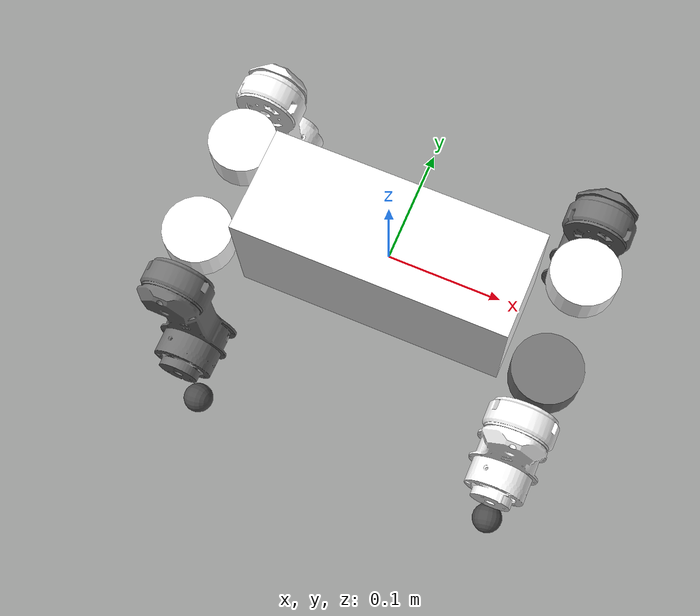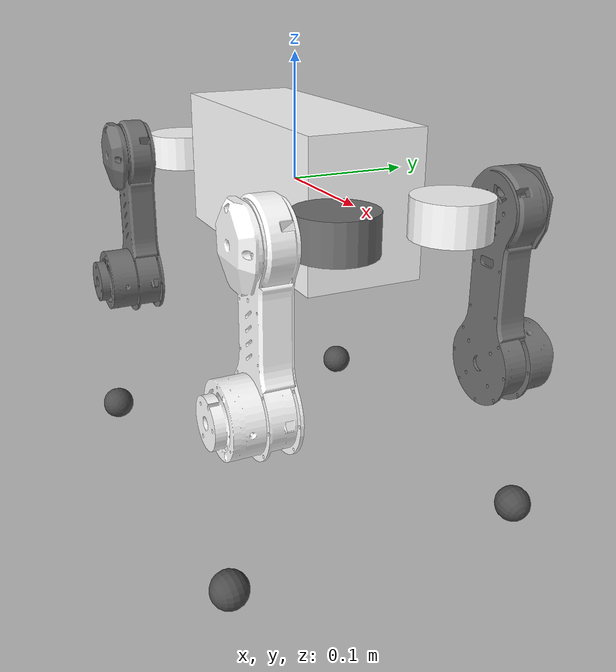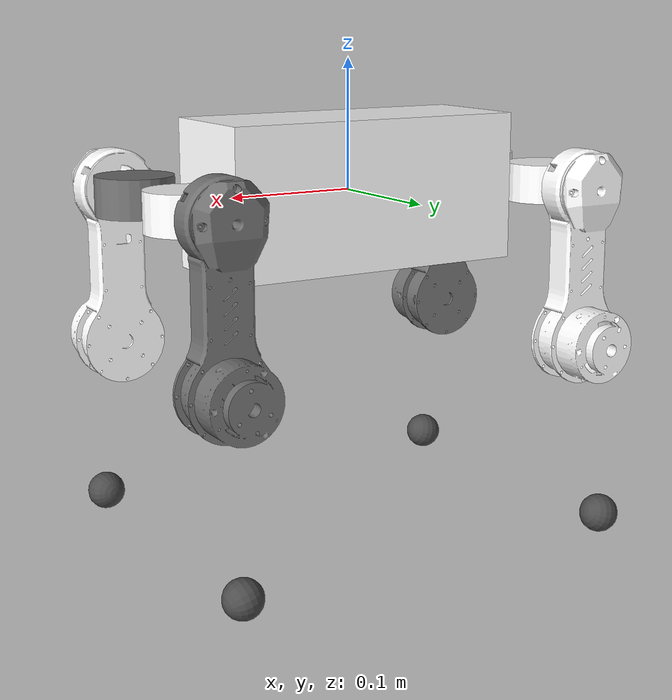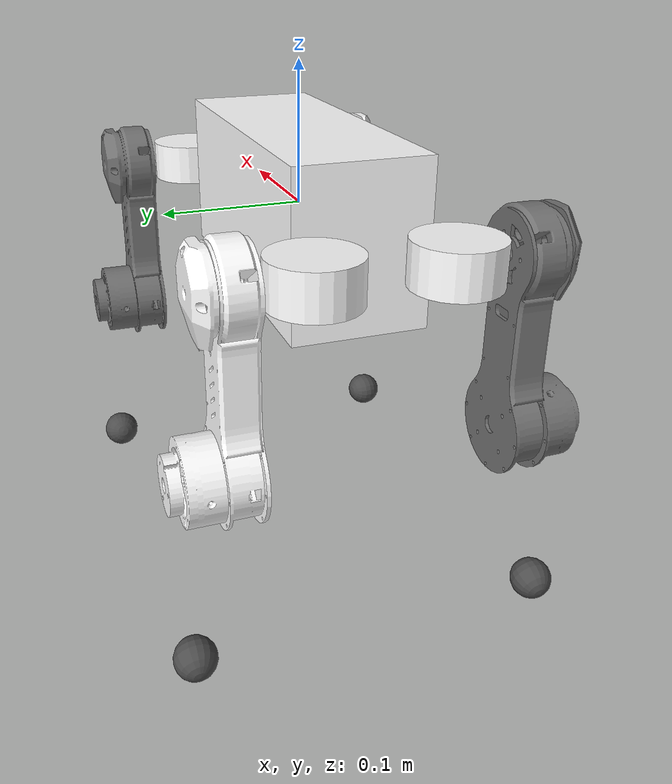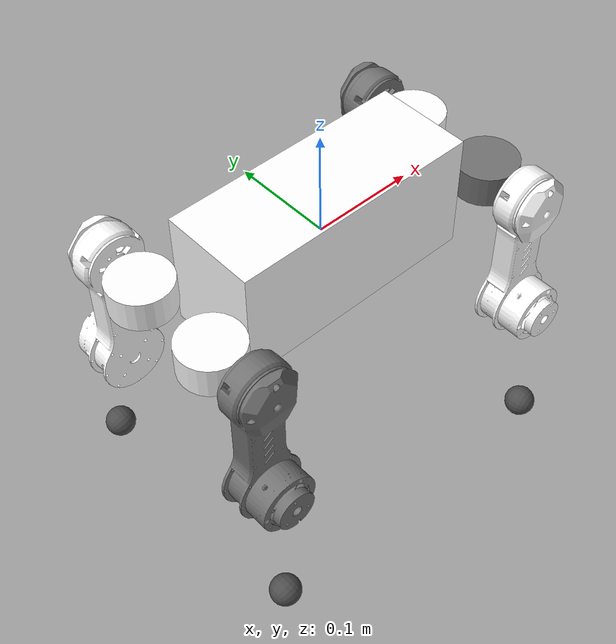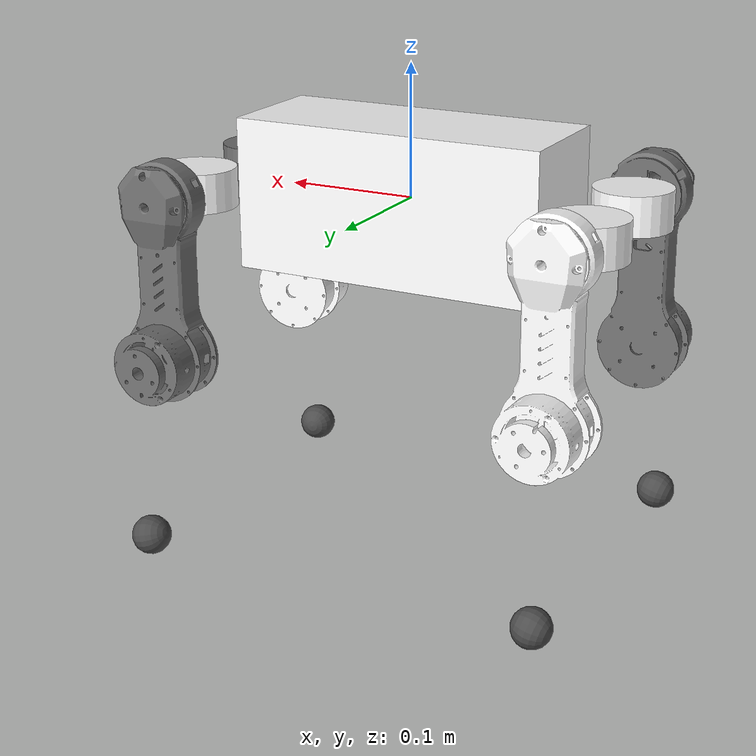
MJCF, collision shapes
<mujoco model="tinymal">
    <compiler angle="radian" meshdir="/home/pi/Downloads/LocomotionWithNP3O-master/resources/tinymal/meshes/" />
    <size njmax="500" nconmax="100" />
    <asset>
        <mesh name="base" file="base.STL" />
        <mesh name="FL_hip" file="FL_hip.STL" />
        <mesh name="FL_thigh" file="FL_thigh.STL" />
        <mesh name="FL_calf" file="FL_calf.STL" />
        <mesh name="FL_foot" file="FL_foot.STL" />
        <mesh name="FR_hip" file="FR_hip.STL" />
        <mesh name="FR_thigh" file="FR_thigh.STL" />
        <mesh name="FR_calf" file="FR_calf.STL" />
        <mesh name="FR_foot" file="FR_foot.STL" />
        <mesh name="RL_hip" file="RL_hip.STL" />
        <mesh name="RL_thigh" file="RL_thigh.STL" />
        <mesh name="RL_calf" file="RL_calf.STL" />
        <mesh name="RL_foot" file="RL_foot.STL" />
        <mesh name="RR_hip" file="RR_hip.STL" />
        <mesh name="RR_thigh" file="RR_thigh.STL" />
        <mesh name="RR_calf" file="RR_calf.STL" />
        <mesh name="RR_foot" file="RR_foot.STL" />
    </asset>
    <worldbody>
        <geom type="mesh" contype="0" conaffinity="0" group="1" rgba="1 1 1 1" mesh="base" />
        <geom size="0.12 0.04675 0.057" type="box" rgba="1 1 1 1" />
        <body name="FL_hip" pos="0.117616 0.044852 0.00119438">
            <inertial pos="0.034298 0.0057266 0.00023908" quat="0.333709 0.332544 0.623558 0.623882" mass="0.41137" diaginertia="0.000150393 0.00013842 0.000127877" />
            <joint name="FL_hip_joint" pos="0 0 0" axis="1 0 0" limited="true" range="-0.6 0.6" />
            <geom type="mesh" contype="0" conaffinity="0" group="1" rgba="1 1 1 1" mesh="FL_hip" />
            <geom size="0.03 0.015" pos="0.04 0 0" type="cylinder" rgba="1 1 1 1" />
            <body name="FL_thigh" pos="0.0368116 0.0350143 0" quat="1 0 -0.000318258 0">
                <inertial pos="-0.00011993 0.024527 -0.093813" quat="0.707059 -0.000622779 -0.000914969 0.707153" mass="0.47556" diaginertia="0.00029152 0.000263841 0.000124049" />
                <joint name="FL_thigh_joint" pos="0 0 0" axis="0 1 0" limited="true" range="-1.57 1.57" />
                <geom type="mesh" contype="0" conaffinity="0" group="1" rgba="0.43922 0.43922 0.43922 1" mesh="FL_thigh" />
                <geom type="mesh" rgba="0.43922 0.43922 0.43922 1" mesh="FL_thigh" />
                <body name="FL_calf" pos="-0.000107063 0.05375 -0.119583" quat="0.801174 0 -0.598432 0">
                    <inertial pos="-0.0261292 -0.00425809 -0.0205724" quat="0.698217 -0.0118704 -0.0122104 0.715684" mass="0.093878" diaginertia="0.00133929 0.00108557 0.000281339" />
                    <joint name="FL_calf_joint" pos="0 0 0" axis="0 -1 0" limited="true" range="0 2.7" />
                    <geom type="mesh" contype="0" conaffinity="0" group="1" rgba="1 1 1 1" mesh="FL_calf" />
                    <geom pos="-0.144829 -0.00756307 -0.0430545" type="mesh" contype="0" conaffinity="0" group="1" rgba="0.298039 0.298039 0.298039 1" mesh="FL_foot" />
                    <geom size="0.015" pos="-0.129829 -0.00756307 -0.0430545" rgba="0.298039 0.298039 0.298039 1" />
                </body>
            </body>
        </body>
        <body name="FR_hip" pos="0.117616 -0.045148 0.00119438">
            <inertial pos="0.034111 -0.0054226 9.1807e-06" quat="0.626856 0.62714 0.3275 0.326329" mass="0.32" diaginertia="0.000150541 0.00013918 0.000127839" />
            <joint name="FR_hip_joint" pos="0 0 0" axis="1 0 0" limited="true" range="-0.6 0.6" />
            <geom type="mesh" contype="0" conaffinity="0" group="1" rgba="0.43922 0.43922 0.43922 1" mesh="FR_hip" />
            <geom size="0.03 0.015" pos="0.04 0 0" type="cylinder" rgba="0.43922 0.43922 0.43922 1" />
            <body name="FR_thigh" pos="0.0368116 -0.0350143 0" quat="1 0 0.000318258 0">
                <inertial pos="-2.0321e-05 -0.024528 -0.093858" quat="0.707057 0.000160267 0.000452484 0.707156" mass="0.35" diaginertia="0.00029152 0.00026387 0.00012406" />
                <joint name="FR_thigh_joint" pos="0 0 0" axis="0 1 0" limited="true" range="-1.57 1.57" />
                <geom type="mesh" contype="0" conaffinity="0" group="1" rgba="1 1 1 1" mesh="FR_thigh" />
                <geom type="mesh" rgba="1 1 1 1" mesh="FR_thigh" />
                <body name="FR_calf" pos="-0.000191533 -0.05375 -0.120381" quat="0.802069 0 -0.597231 0">
                    <inertial pos="-0.0258287 0.00412407 -0.023875" quat="0.713792 0.00428129 0.0042488 0.700332" mass="0.093878" diaginertia="0.0013295 0.0010817 0.000275855" />
                    <joint name="FR_calf_joint" pos="0 0 0" axis="0 -1 0" limited="true" range="0 2.7" />
                    <geom type="mesh" contype="0" conaffinity="0" group="1" rgba="1 1 1 1" mesh="FR_calf" />
                    <geom pos="-0.144255 0.00743693 -0.0430545" quat="0.540882 -0.455463 -0.455463 -0.540882" type="mesh" contype="0" conaffinity="0" group="1" rgba="0.298039 0.298039 0.298039 1" mesh="FR_foot" />
                    <geom size="0.015" pos="-0.129255 0.00743693 -0.0430545" quat="0.540882 -0.455463 -0.455463 -0.540882" rgba="0.298039 0.298039 0.298039 1" />
                </body>
            </body>
        </body>
        <body name="RL_hip" pos="-0.115397 0.044852 0.00119438">
            <inertial pos="-0.034111 0.0054226 9.1807e-06" quat="0.62714 0.626856 0.326329 0.3275" mass="0.32" diaginertia="0.000150541 0.00013918 0.000127839" />
            <joint name="RL_hip_joint" pos="0 0 0" axis="1 0 0" limited="true" range="-0.6 0.6" />
            <geom type="mesh" contype="0" conaffinity="0" group="1" rgba="1 1 1 1" mesh="RL_hip" />
            <geom size="0.03 0.015" pos="-0.04 0 0" type="cylinder" rgba="1 1 1 1" />
            <body name="RL_thigh" pos="-0.0368116 0.0350143 0">
                <inertial pos="7.9942e-05 0.024528 -0.093858" quat="0.707056 6.65811e-05 -0.000225659 0.707157" mass="0.35" diaginertia="0.00029152 0.00026387 0.00012407" />
                <joint name="RL_thigh_joint" pos="0 0 0" axis="0 -1 0" limited="true" range="-1.57 1.57" />
                <geom type="mesh" contype="0" conaffinity="0" group="1" rgba="1 1 1 1" mesh="RL_thigh" />
                <geom type="mesh" rgba="1 1 1 1" mesh="RL_thigh" />
                <body name="RL_calf" pos="0.000259007 0.05375 -0.120385" quat="0.606526 0 -0.795063 0">
                    <inertial pos="-0.0237615 -0.00425812 0.0256998" quat="0.697304 -0.01098 -0.0113418 0.716601" mass="0.093878" diaginertia="0.0012897 0.00108624 0.000231077" />
                    <joint name="RL_calf_joint" pos="0 0 0" axis="0 1 0" limited="true" range="0 2.7" />
                    <geom type="mesh" contype="0" conaffinity="0" group="1" rgba="1 1 1 1" mesh="RL_calf" />
                    <geom pos="-0.14426 -0.0075631 0.039712" type="mesh" contype="0" conaffinity="0" group="1" rgba="0.298039 0.298039 0.298039 1" mesh="RL_foot" />
                    <geom size="0.015" pos="-0.12926 -0.0075631 0.039712" rgba="0.298039 0.298039 0.298039 1" />
                </body>
            </body>
        </body>
        <body name="RR_hip" pos="-0.1154 -0.045148 0.0011944">
            <inertial pos="-0.034111 -0.0054226 -9.1807e-06" quat="0.326329 0.3275 0.62714 0.626856" mass="0.32" diaginertia="0.000150541 0.00013918 0.000127839" />
            <joint name="RR_hip_joint" pos="0 0 0" axis="1 0 0" limited="true" range="-0.6 0.6" />
            <geom type="mesh" contype="0" conaffinity="0" group="1" rgba="1 1 1 1" mesh="RR_hip" />
            <geom size="0.03 0.015" pos="-0.04 0 0" type="cylinder" rgba="1 1 1 1" />
            <body name="RR_thigh" pos="-0.0368116 -0.0350143 0">
                <inertial pos="6.0298e-05 -0.024527 -0.093813" quat="0.707058 0.000399299 0.000691499 0.707155" mass="0.47556" diaginertia="0.00029152 0.00026384 0.00012405" />
                <joint name="RR_thigh_joint" pos="0 0 0" axis="0 -1 0" limited="true" range="-1.57 1.57" />
                <geom type="mesh" contype="0" conaffinity="0" group="1" rgba="0.43922 0.43922 0.43922 1" mesh="RR_thigh" />
                <geom type="mesh" rgba="0.43922 0.43922 0.43922 1" mesh="RR_thigh" />
                <body name="RR_calf" pos="3.67726e-05 -0.05375 -0.119582" quat="0.604266 0 -0.796782 0">
                    <inertial pos="-0.0238457 0.00425809 0.0257353" quat="0.716563 -0.0115612 -0.011203 0.697337" mass="0.093878" diaginertia="0.00129149 0.00108638 0.000232732" />
                    <joint name="RR_calf_joint" pos="0 0 0" axis="0 1 0" limited="true" range="0 2.7" />
                    <geom type="mesh" contype="0" conaffinity="0" group="1" rgba="1 1 1 1" mesh="RR_calf" />
                    <geom pos="-0.14483 0.0075631 0.043054" type="mesh" contype="0" conaffinity="0" group="1" rgba="0.298039 0.298039 0.298039 1" mesh="RR_foot" />
                    <geom size="0.015" pos="-0.12983 0.0075631 0.043054" rgba="0.298039 0.298039 0.298039 1" />
                </body>
            </body>
        </body>
    </worldbody>
</mujoco>
